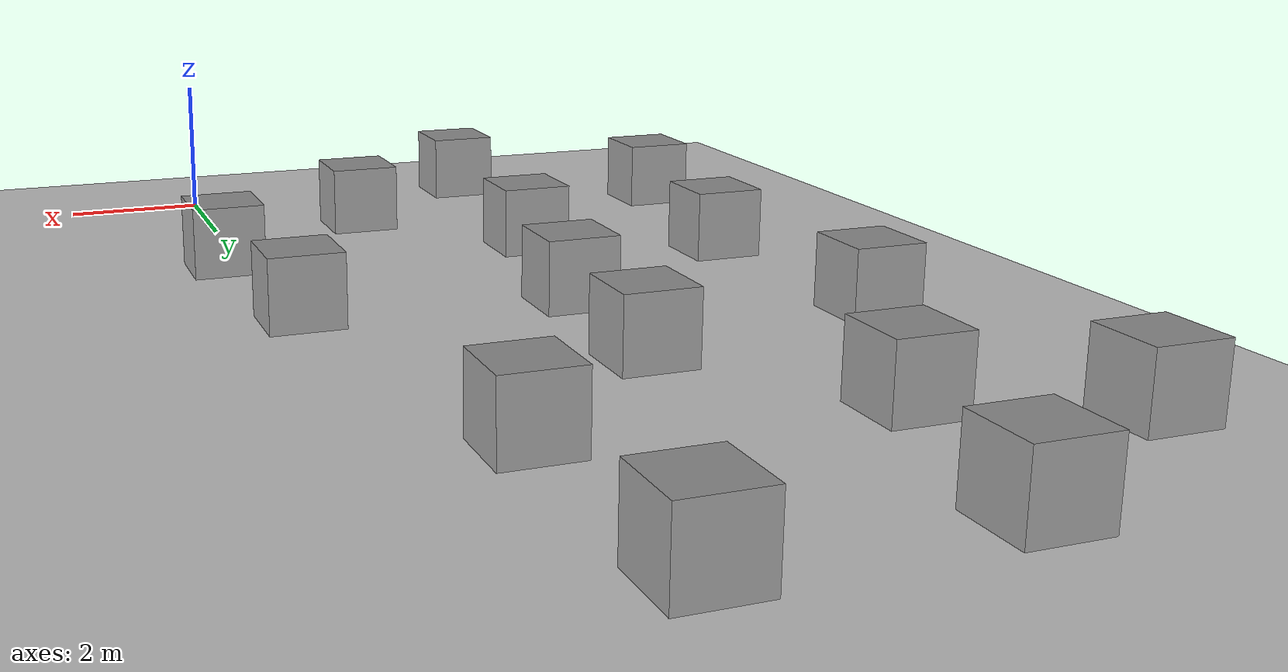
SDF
<sdf version="1.6">
 <world name="default">
  <model name="ground_plane">
   <static>1</static>
   <link name="link">
    <collision name="collision">
     <geometry><plane><normal>0 0 1</normal><size>100 100</size></plane></geometry>
     <surface><friction><ode><mu>100</mu><mu2>50</mu2></ode></friction></surface>
    </collision>
    <visual name="visual">
     <cast_shadows>0</cast_shadows>
     <geometry><plane><normal>0 0 1</normal><size>100 100</size></plane></geometry>
     <material>
      <script><uri>file://media/materials/scripts/gazebo.material</uri><name>Gazebo/Grey</name></script>
     </material>
    </visual>
   </link>
  </model>
  <model name="box_1">
   <link name="link_3">
    <inertial>
     <mass>1</mass>
     <inertia>
      <ixx>0.166667</ixx>
      <ixy>0</ixy>
      <ixz>0</ixz>
      <iyy>0.166667</iyy>
      <iyz>0</iyz>
      <izz>0.166667</izz>
     </inertia>
    </inertial>
    <pose>-0.10623 1.19174 0.5 0 -0 0</pose>
    <visual name="visual">
     <geometry><box><size>1 1 1</size></box></geometry>
     <material>
      <lighting>1</lighting>
      <script><uri>file://media/materials/scripts/gazebo.material</uri><name>Gazebo/Grey</name></script>
      <shader type="pixel"/>
     </material>
    </visual>
    <collision name="collision">
     <geometry><box><size>1 1 1</size></box></geometry>
     <surface>
      <friction>
       <ode><mu>1</mu><mu2>1</mu2><fdir1>0 0 0</fdir1><slip1>0</slip1><slip2>0</slip2></ode>
       <torsional>
        <coefficient>1</coefficient>
        <patch_radius>0</patch_radius>
        <surface_radius>0</surface_radius>
        <use_patch_radius>1</use_patch_radius>
        <ode><slip>0</slip></ode>
       </torsional>
      </friction>
      <bounce><restitution_coefficient>0</restitution_coefficient><threshold>1e+06</threshold></bounce>
      <contact>
       <collide_without_contact>0</collide_without_contact>
       <collide_without_contact_bitmask>1</collide_without_contact_bitmask>
       <collide_bitmask>1</collide_bitmask>
       <ode>
        <soft_cfm>0</soft_cfm>
        <soft_erp>0.2</soft_erp>
        <kp>1e+13</kp>
        <kd>1</kd>
        <max_vel>0.01</max_vel>
        <min_depth>0</min_depth>
       </ode>
       <bullet>
        <split_impulse>1</split_impulse>
        <split_impulse_penetration_threshold>-0.01</split_impulse_penetration_threshold>
        <soft_cfm>0</soft_cfm>
        <soft_erp>0.2</soft_erp>
        <kp>1e+13</kp>
        <kd>1</kd>
       </bullet>
      </contact>
     </surface>
    </collision>
   </link>
   <static>0</static>
   <pose>-2.12221 1.08979 0 0 -0 0</pose>
  </model>
  <model name="box_1_clone">
   <link name="link_3">
    <inertial>
     <mass>1</mass>
     <inertia>
      <ixx>0.166667</ixx>
      <ixy>0</ixy>
      <ixz>0</ixz>
      <iyy>0.166667</iyy>
      <iyz>0</iyz>
      <izz>0.166667</izz>
     </inertia>
    </inertial>
    <pose>-0.10623 1.19174 0.5 0 -0 0</pose>
    <visual name="visual">
     <geometry><box><size>1 1 1</size></box></geometry>
     <material>
      <lighting>1</lighting>
      <script><uri>file://media/materials/scripts/gazebo.material</uri><name>Gazebo/Grey</name></script>
      <shader type="pixel"/>
     </material>
    </visual>
    <collision name="collision">
     <geometry><box><size>1 1 1</size></box></geometry>
     <surface>
      <friction>
       <ode><mu>1</mu><mu2>1</mu2><fdir1>0 0 0</fdir1><slip1>0</slip1><slip2>0</slip2></ode>
       <torsional>
        <coefficient>1</coefficient>
        <patch_radius>0</patch_radius>
        <surface_radius>0</surface_radius>
        <use_patch_radius>1</use_patch_radius>
        <ode><slip>0</slip></ode>
       </torsional>
      </friction>
      <bounce><restitution_coefficient>0</restitution_coefficient><threshold>1e+06</threshold></bounce>
      <contact>
       <collide_without_contact>0</collide_without_contact>
       <collide_without_contact_bitmask>1</collide_without_contact_bitmask>
       <collide_bitmask>1</collide_bitmask>
       <ode>
        <soft_cfm>0</soft_cfm>
        <soft_erp>0.2</soft_erp>
        <kp>1e+13</kp>
        <kd>1</kd>
        <max_vel>0.01</max_vel>
        <min_depth>0</min_depth>
       </ode>
       <bullet>
        <split_impulse>1</split_impulse>
        <split_impulse_penetration_threshold>-0.01</split_impulse_penetration_threshold>
        <soft_cfm>0</soft_cfm>
        <soft_erp>0.2</soft_erp>
        <kp>1e+13</kp>
        <kd>1</kd>
       </bullet>
      </contact>
     </surface>
    </collision>
   </link>
   <static>0</static>
   <pose>-4.13322 3.35982 0 0 -0 0</pose>
  </model>
  <model name="box_1_clone_0">
   <link name="link_3">
    <inertial>
     <mass>1</mass>
     <inertia>
      <ixx>0.166667</ixx>
      <ixy>0</ixy>
      <ixz>0</ixz>
      <iyy>0.166667</iyy>
      <iyz>0</iyz>
      <izz>0.166667</izz>
     </inertia>
    </inertial>
    <pose>-0.10623 1.19174 0.5 0 -0 0</pose>
    <visual name="visual">
     <geometry><box><size>1 1 1</size></box></geometry>
     <material>
      <lighting>1</lighting>
      <script><uri>file://media/materials/scripts/gazebo.material</uri><name>Gazebo/Grey</name></script>
      <shader type="pixel"/>
     </material>
    </visual>
    <collision name="collision">
     <geometry><box><size>1 1 1</size></box></geometry>
     <surface>
      <friction>
       <ode><mu>1</mu><mu2>1</mu2><fdir1>0 0 0</fdir1><slip1>0</slip1><slip2>0</slip2></ode>
       <torsional>
        <coefficient>1</coefficient>
        <patch_radius>0</patch_radius>
        <surface_radius>0</surface_radius>
        <use_patch_radius>1</use_patch_radius>
        <ode><slip>0</slip></ode>
       </torsional>
      </friction>
      <bounce><restitution_coefficient>0</restitution_coefficient><threshold>1e+06</threshold></bounce>
      <contact>
       <collide_without_contact>0</collide_without_contact>
       <collide_without_contact_bitmask>1</collide_without_contact_bitmask>
       <collide_bitmask>1</collide_bitmask>
       <ode>
        <soft_cfm>0</soft_cfm>
        <soft_erp>0.2</soft_erp>
        <kp>1e+13</kp>
        <kd>1</kd>
        <max_vel>0.01</max_vel>
        <min_depth>0</min_depth>
       </ode>
       <bullet>
        <split_impulse>1</split_impulse>
        <split_impulse_penetration_threshold>-0.01</split_impulse_penetration_threshold>
        <soft_cfm>0</soft_cfm>
        <soft_erp>0.2</soft_erp>
        <kp>1e+13</kp>
        <kd>1</kd>
       </bullet>
      </contact>
     </surface>
    </collision>
   </link>
   <static>0</static>
   <pose>0.390969 3.09007 0 0 -0 0</pose>
  </model>
  <model name="box_1_clone_4">
   <link name="link_3">
    <inertial>
     <mass>1</mass>
     <inertia>
      <ixx>0.166667</ixx>
      <ixy>0</ixy>
      <ixz>0</ixz>
      <iyy>0.166667</iyy>
      <iyz>0</iyz>
      <izz>0.166667</izz>
     </inertia>
    </inertial>
    <pose>-0.10623 1.19174 0.5 0 -0 0</pose>
    <visual name="visual">
     <geometry><box><size>1 1 1</size></box></geometry>
     <material>
      <lighting>1</lighting>
      <script><uri>file://media/materials/scripts/gazebo.material</uri><name>Gazebo/Grey</name></script>
      <shader type="pixel"/>
     </material>
    </visual>
    <collision name="collision">
     <geometry><box><size>1 1 1</size></box></geometry>
     <surface>
      <friction>
       <ode><mu>1</mu><mu2>1</mu2><fdir1>0 0 0</fdir1><slip1>0</slip1><slip2>0</slip2></ode>
       <torsional>
        <coefficient>1</coefficient>
        <patch_radius>0</patch_radius>
        <surface_radius>0</surface_radius>
        <use_patch_radius>1</use_patch_radius>
        <ode><slip>0</slip></ode>
       </torsional>
      </friction>
      <bounce><restitution_coefficient>0</restitution_coefficient><threshold>1e+06</threshold></bounce>
      <contact>
       <collide_without_contact>0</collide_without_contact>
       <collide_without_contact_bitmask>1</collide_without_contact_bitmask>
       <collide_bitmask>1</collide_bitmask>
       <ode>
        <soft_cfm>0</soft_cfm>
        <soft_erp>0.2</soft_erp>
        <kp>1e+13</kp>
        <kd>1</kd>
        <max_vel>0.01</max_vel>
        <min_depth>0</min_depth>
       </ode>
       <bullet>
        <split_impulse>1</split_impulse>
        <split_impulse_penetration_threshold>-0.01</split_impulse_penetration_threshold>
        <soft_cfm>0</soft_cfm>
        <soft_erp>0.2</soft_erp>
        <kp>1e+13</kp>
        <kd>1</kd>
       </bullet>
      </contact>
     </surface>
    </collision>
   </link>
   <static>0</static>
   <pose>-4.39972 -0.886482 0 0 -0 0</pose>
  </model>
  <model name="box_1_clone_6">
   <link name="link_3">
    <inertial>
     <mass>1</mass>
     <inertia>
      <ixx>0.166667</ixx>
      <ixy>0</ixy>
      <ixz>0</ixz>
      <iyy>0.166667</iyy>
      <iyz>0</iyz>
      <izz>0.166667</izz>
     </inertia>
    </inertial>
    <pose>-0.10623 1.19174 0.5 0 -0 0</pose>
    <visual name="visual">
     <geometry><box><size>1 1 1</size></box></geometry>
     <material>
      <lighting>1</lighting>
      <script><uri>file://media/materials/scripts/gazebo.material</uri><name>Gazebo/Grey</name></script>
      <shader type="pixel"/>
     </material>
    </visual>
    <collision name="collision">
     <geometry><box><size>1 1 1</size></box></geometry>
     <surface>
      <friction>
       <ode><mu>1</mu><mu2>1</mu2><fdir1>0 0 0</fdir1><slip1>0</slip1><slip2>0</slip2></ode>
       <torsional>
        <coefficient>1</coefficient>
        <patch_radius>0</patch_radius>
        <surface_radius>0</surface_radius>
        <use_patch_radius>1</use_patch_radius>
        <ode><slip>0</slip></ode>
       </torsional>
      </friction>
      <bounce><restitution_coefficient>0</restitution_coefficient><threshold>1e+06</threshold></bounce>
      <contact>
       <collide_without_contact>0</collide_without_contact>
       <collide_without_contact_bitmask>1</collide_without_contact_bitmask>
       <collide_bitmask>1</collide_bitmask>
       <ode>
        <soft_cfm>0</soft_cfm>
        <soft_erp>0.2</soft_erp>
        <kp>1e+13</kp>
        <kd>1</kd>
        <max_vel>0.01</max_vel>
        <min_depth>0</min_depth>
       </ode>
       <bullet>
        <split_impulse>1</split_impulse>
        <split_impulse_penetration_threshold>-0.01</split_impulse_penetration_threshold>
        <soft_cfm>0</soft_cfm>
        <soft_erp>0.2</soft_erp>
        <kp>1e+13</kp>
        <kd>1</kd>
       </bullet>
      </contact>
     </surface>
    </collision>
   </link>
   <static>0</static>
   <pose>-3.4786 9.0601 0 0 -0 0</pose>
  </model>
  <model name="box_1_clone_7">
   <link name="link_3">
    <inertial>
     <mass>1</mass>
     <inertia>
      <ixx>0.166667</ixx>
      <ixy>0</ixy>
      <ixz>0</ixz>
      <iyy>0.166667</iyy>
      <iyz>0</iyz>
      <izz>0.166667</izz>
     </inertia>
    </inertial>
    <pose>-0.10623 1.19174 0.5 0 -0 0</pose>
    <visual name="visual">
     <geometry><box><size>1 1 1</size></box></geometry>
     <material>
      <lighting>1</lighting>
      <script><uri>file://media/materials/scripts/gazebo.material</uri><name>Gazebo/Grey</name></script>
      <shader type="pixel"/>
     </material>
    </visual>
    <collision name="collision">
     <geometry><box><size>1 1 1</size></box></geometry>
     <surface>
      <friction>
       <ode><mu>1</mu><mu2>1</mu2><fdir1>0 0 0</fdir1><slip1>0</slip1><slip2>0</slip2></ode>
       <torsional>
        <coefficient>1</coefficient>
        <patch_radius>0</patch_radius>
        <surface_radius>0</surface_radius>
        <use_patch_radius>1</use_patch_radius>
        <ode><slip>0</slip></ode>
       </torsional>
      </friction>
      <bounce><restitution_coefficient>0</restitution_coefficient><threshold>1e+06</threshold></bounce>
      <contact>
       <collide_without_contact>0</collide_without_contact>
       <collide_without_contact_bitmask>1</collide_without_contact_bitmask>
       <collide_bitmask>1</collide_bitmask>
       <ode>
        <soft_cfm>0</soft_cfm>
        <soft_erp>0.2</soft_erp>
        <kp>1e+13</kp>
        <kd>1</kd>
        <max_vel>0.01</max_vel>
        <min_depth>0</min_depth>
       </ode>
       <bullet>
        <split_impulse>1</split_impulse>
        <split_impulse_penetration_threshold>-0.01</split_impulse_penetration_threshold>
        <soft_cfm>0</soft_cfm>
        <soft_erp>0.2</soft_erp>
        <kp>1e+13</kp>
        <kd>1</kd>
       </bullet>
      </contact>
     </surface>
    </collision>
   </link>
   <static>0</static>
   <pose>-1.16627 11.2433 0 0 -0 0</pose>
  </model>
  <model name="box_1_clone_14">
   <link name="link_3">
    <inertial>
     <mass>1</mass>
     <inertia>
      <ixx>0.166667</ixx>
      <ixy>0</ixy>
      <ixz>0</ixz>
      <iyy>0.166667</iyy>
      <iyz>0</iyz>
      <izz>0.166667</izz>
     </inertia>
    </inertial>
    <pose>-0.10623 1.19174 0.5 0 -0 0</pose>
    <visual name="visual">
     <geometry><box><size>1 1 1</size></box></geometry>
     <material>
      <lighting>1</lighting>
      <script><uri>file://media/materials/scripts/gazebo.material</uri><name>Gazebo/Grey</name></script>
      <shader type="pixel"/>
     </material>
    </visual>
    <collision name="collision">
     <geometry><box><size>1 1 1</size></box></geometry>
     <surface>
      <friction>
       <ode><mu>1</mu><mu2>1</mu2><fdir1>0 0 0</fdir1><slip1>0</slip1><slip2>0</slip2></ode>
       <torsional>
        <coefficient>1</coefficient>
        <patch_radius>0</patch_radius>
        <surface_radius>0</surface_radius>
        <use_patch_radius>1</use_patch_radius>
        <ode><slip>0</slip></ode>
       </torsional>
      </friction>
      <bounce><restitution_coefficient>0</restitution_coefficient><threshold>1e+06</threshold></bounce>
      <contact>
       <collide_without_contact>0</collide_without_contact>
       <collide_without_contact_bitmask>1</collide_without_contact_bitmask>
       <collide_bitmask>1</collide_bitmask>
       <ode>
        <soft_cfm>0</soft_cfm>
        <soft_erp>0.2</soft_erp>
        <kp>1e+13</kp>
        <kd>1</kd>
        <max_vel>0.01</max_vel>
        <min_depth>0</min_depth>
       </ode>
       <bullet>
        <split_impulse>1</split_impulse>
        <split_impulse_penetration_threshold>-0.01</split_impulse_penetration_threshold>
        <soft_cfm>0</soft_cfm>
        <soft_erp>0.2</soft_erp>
        <kp>1e+13</kp>
        <kd>1</kd>
       </bullet>
      </contact>
     </surface>
    </collision>
   </link>
   <static>0</static>
   <pose>-1.43147 14.554 0 0 -0 0</pose>
  </model>
  <model name="box_1_clone_15">
   <link name="link_3">
    <inertial>
     <mass>1</mass>
     <inertia>
      <ixx>0.166667</ixx>
      <ixy>0</ixy>
      <ixz>0</ixz>
      <iyy>0.166667</iyy>
      <iyz>0</iyz>
      <izz>0.166667</izz>
     </inertia>
    </inertial>
    <pose>-0.10623 1.19174 0.5 0 -0 0</pose>
    <visual name="visual">
     <geometry><box><size>1 1 1</size></box></geometry>
     <material>
      <lighting>1</lighting>
      <script><uri>file://media/materials/scripts/gazebo.material</uri><name>Gazebo/Grey</name></script>
      <shader type="pixel"/>
     </material>
    </visual>
    <collision name="collision">
     <geometry><box><size>1 1 1</size></box></geometry>
     <surface>
      <friction>
       <ode><mu>1</mu><mu2>1</mu2><fdir1>0 0 0</fdir1><slip1>0</slip1><slip2>0</slip2></ode>
       <torsional>
        <coefficient>1</coefficient>
        <patch_radius>0</patch_radius>
        <surface_radius>0</surface_radius>
        <use_patch_radius>1</use_patch_radius>
        <ode><slip>0</slip></ode>
       </torsional>
      </friction>
      <bounce><restitution_coefficient>0</restitution_coefficient><threshold>1e+06</threshold></bounce>
      <contact>
       <collide_without_contact>0</collide_without_contact>
       <collide_without_contact_bitmask>1</collide_without_contact_bitmask>
       <collide_bitmask>1</collide_bitmask>
       <ode>
        <soft_cfm>0</soft_cfm>
        <soft_erp>0.2</soft_erp>
        <kp>1e+13</kp>
        <kd>1</kd>
        <max_vel>0.01</max_vel>
        <min_depth>0</min_depth>
       </ode>
       <bullet>
        <split_impulse>1</split_impulse>
        <split_impulse_penetration_threshold>-0.01</split_impulse_penetration_threshold>
        <soft_cfm>0</soft_cfm>
        <soft_erp>0.2</soft_erp>
        <kp>1e+13</kp>
        <kd>1</kd>
       </bullet>
      </contact>
     </surface>
    </collision>
   </link>
   <static>0</static>
   <pose>-4.84389 14.5059 0 0 -0 0</pose>
  </model>
  <model name="box_1_clone_16">
   <link name="link_3">
    <inertial>
     <mass>1</mass>
     <inertia>
      <ixx>0.166667</ixx>
      <ixy>0</ixy>
      <ixz>0</ixz>
      <iyy>0.166667</iyy>
      <iyz>0</iyz>
      <izz>0.166667</izz>
     </inertia>
    </inertial>
    <pose>-0.10623 1.19174 0.5 0 -0 0</pose>
    <visual name="visual">
     <geometry><box><size>1 1 1</size></box></geometry>
     <material>
      <lighting>1</lighting>
      <script><uri>file://media/materials/scripts/gazebo.material</uri><name>Gazebo/Grey</name></script>
      <shader type="pixel"/>
     </material>
    </visual>
    <collision name="collision">
     <geometry><box><size>1 1 1</size></box></geometry>
     <surface>
      <friction>
       <ode><mu>1</mu><mu2>1</mu2><fdir1>0 0 0</fdir1><slip1>0</slip1><slip2>0</slip2></ode>
       <torsional>
        <coefficient>1</coefficient>
        <patch_radius>0</patch_radius>
        <surface_radius>0</surface_radius>
        <use_patch_radius>1</use_patch_radius>
        <ode><slip>0</slip></ode>
       </torsional>
      </friction>
      <bounce><restitution_coefficient>0</restitution_coefficient><threshold>1e+06</threshold></bounce>
      <contact>
       <collide_without_contact>0</collide_without_contact>
       <collide_without_contact_bitmask>1</collide_without_contact_bitmask>
       <collide_bitmask>1</collide_bitmask>
       <ode>
        <soft_cfm>0</soft_cfm>
        <soft_erp>0.2</soft_erp>
        <kp>1e+13</kp>
        <kd>1</kd>
        <max_vel>0.01</max_vel>
        <min_depth>0</min_depth>
       </ode>
       <bullet>
        <split_impulse>1</split_impulse>
        <split_impulse_penetration_threshold>-0.01</split_impulse_penetration_threshold>
        <soft_cfm>0</soft_cfm>
        <soft_erp>0.2</soft_erp>
        <kp>1e+13</kp>
        <kd>1</kd>
       </bullet>
      </contact>
     </surface>
    </collision>
   </link>
   <static>0</static>
   <pose>-5.42133 11.5671 0 0 -0 0</pose>
  </model>
  <model name="box_1_clone_17">
   <link name="link_3">
    <inertial>
     <mass>1</mass>
     <inertia>
      <ixx>0.166667</ixx>
      <ixy>0</ixy>
      <ixz>0</ixz>
      <iyy>0.166667</iyy>
      <iyz>0</iyz>
      <izz>0.166667</izz>
     </inertia>
    </inertial>
    <pose>-0.10623 1.19174 0.5 0 -0 0</pose>
    <visual name="visual">
     <geometry><box><size>1 1 1</size></box></geometry>
     <material>
      <lighting>1</lighting>
      <script><uri>file://media/materials/scripts/gazebo.material</uri><name>Gazebo/Grey</name></script>
      <shader type="pixel"/>
     </material>
    </visual>
    <collision name="collision">
     <geometry><box><size>1 1 1</size></box></geometry>
     <surface>
      <friction>
       <ode><mu>1</mu><mu2>1</mu2><fdir1>0 0 0</fdir1><slip1>0</slip1><slip2>0</slip2></ode>
       <torsional>
        <coefficient>1</coefficient>
        <patch_radius>0</patch_radius>
        <surface_radius>0</surface_radius>
        <use_patch_radius>1</use_patch_radius>
        <ode><slip>0</slip></ode>
       </torsional>
      </friction>
      <bounce><restitution_coefficient>0</restitution_coefficient><threshold>1e+06</threshold></bounce>
      <contact>
       <collide_without_contact>0</collide_without_contact>
       <collide_without_contact_bitmask>1</collide_without_contact_bitmask>
       <collide_bitmask>1</collide_bitmask>
       <ode>
        <soft_cfm>0</soft_cfm>
        <soft_erp>0.2</soft_erp>
        <kp>1e+13</kp>
        <kd>1</kd>
        <max_vel>0.01</max_vel>
        <min_depth>0</min_depth>
       </ode>
       <bullet>
        <split_impulse>1</split_impulse>
        <split_impulse_penetration_threshold>-0.01</split_impulse_penetration_threshold>
        <soft_cfm>0</soft_cfm>
        <soft_erp>0.2</soft_erp>
        <kp>1e+13</kp>
        <kd>1</kd>
       </bullet>
      </contact>
     </surface>
    </collision>
   </link>
   <static>0</static>
   <pose>-7.74453 12.6972 0 0 -0 0</pose>
  </model>
  <model name="box_1_clone_19">
   <link name="link_3">
    <inertial>
     <mass>1</mass>
     <inertia>
      <ixx>0.166667</ixx>
      <ixy>0</ixy>
      <ixz>0</ixz>
      <iyy>0.166667</iyy>
      <iyz>0</iyz>
      <izz>0.166667</izz>
     </inertia>
    </inertial>
    <pose>-0.10623 1.19174 0.5 0 -0 0</pose>
    <visual name="visual">
     <geometry><box><size>1 1 1</size></box></geometry>
     <material>
      <lighting>1</lighting>
      <script><uri>file://media/materials/scripts/gazebo.material</uri><name>Gazebo/Grey</name></script>
      <shader type="pixel"/>
     </material>
    </visual>
    <collision name="collision">
     <geometry><box><size>1 1 1</size></box></geometry>
     <surface>
      <friction>
       <ode><mu>1</mu><mu2>1</mu2><fdir1>0 0 0</fdir1><slip1>0</slip1><slip2>0</slip2></ode>
       <torsional>
        <coefficient>1</coefficient>
        <patch_radius>0</patch_radius>
        <surface_radius>0</surface_radius>
        <use_patch_radius>1</use_patch_radius>
        <ode><slip>0</slip></ode>
       </torsional>
      </friction>
      <bounce><restitution_coefficient>0</restitution_coefficient><threshold>1e+06</threshold></bounce>
      <contact>
       <collide_without_contact>0</collide_without_contact>
       <collide_without_contact_bitmask>1</collide_without_contact_bitmask>
       <collide_bitmask>1</collide_bitmask>
       <ode>
        <soft_cfm>0</soft_cfm>
        <soft_erp>0.2</soft_erp>
        <kp>1e+13</kp>
        <kd>1</kd>
        <max_vel>0.01</max_vel>
        <min_depth>0</min_depth>
       </ode>
       <bullet>
        <split_impulse>1</split_impulse>
        <split_impulse_penetration_threshold>-0.01</split_impulse_penetration_threshold>
        <soft_cfm>0</soft_cfm>
        <soft_erp>0.2</soft_erp>
        <kp>1e+13</kp>
        <kd>1</kd>
       </bullet>
      </contact>
     </surface>
    </collision>
   </link>
   <static>0</static>
   <pose>-7.30771 0.831586 0 0 -0 0</pose>
  </model>
  <model name="box_1_clone_clone">
   <link name="link_3">
    <inertial>
     <mass>1</mass>
     <inertia>
      <ixx>0.166667</ixx>
      <ixy>0</ixy>
      <ixz>0</ixz>
      <iyy>0.166667</iyy>
      <iyz>0</iyz>
      <izz>0.166667</izz>
     </inertia>
    </inertial>
    <pose>-0.10623 1.19174 0.5 0 -0 0</pose>
    <visual name="visual">
     <geometry><box><size>1 1 1</size></box></geometry>
     <material>
      <lighting>1</lighting>
      <script><uri>file://media/materials/scripts/gazebo.material</uri><name>Gazebo/Grey</name></script>
      <shader type="pixel"/>
     </material>
    </visual>
    <collision name="collision">
     <geometry><box><size>1 1 1</size></box></geometry>
     <surface>
      <friction>
       <ode><mu>1</mu><mu2>1</mu2><fdir1>0 0 0</fdir1><slip1>0</slip1><slip2>0</slip2></ode>
       <torsional>
        <coefficient>1</coefficient>
        <patch_radius>0</patch_radius>
        <surface_radius>0</surface_radius>
        <use_patch_radius>1</use_patch_radius>
        <ode><slip>0</slip></ode>
       </torsional>
      </friction>
      <bounce><restitution_coefficient>0</restitution_coefficient><threshold>1e+06</threshold></bounce>
      <contact>
       <collide_without_contact>0</collide_without_contact>
       <collide_without_contact_bitmask>1</collide_without_contact_bitmask>
       <collide_bitmask>1</collide_bitmask>
       <ode>
        <soft_cfm>0</soft_cfm>
        <soft_erp>0.2</soft_erp>
        <kp>1e+13</kp>
        <kd>1</kd>
        <max_vel>0.01</max_vel>
        <min_depth>0</min_depth>
       </ode>
       <bullet>
        <split_impulse>1</split_impulse>
        <split_impulse_penetration_threshold>-0.01</split_impulse_penetration_threshold>
        <soft_cfm>0</soft_cfm>
        <soft_erp>0.2</soft_erp>
        <kp>1e+13</kp>
        <kd>1</kd>
       </bullet>
      </contact>
     </surface>
    </collision>
   </link>
   <static>0</static>
   <pose>-6.69553 4.55073 0 0 -0 0</pose>
  </model>
  <model name="box_1_clone_clone_0">
   <link name="link_3">
    <inertial>
     <mass>1</mass>
     <inertia>
      <ixx>0.166667</ixx>
      <ixy>0</ixy>
      <ixz>0</ixz>
      <iyy>0.166667</iyy>
      <iyz>0</iyz>
      <izz>0.166667</izz>
     </inertia>
    </inertial>
    <pose>-0.10623 1.19174 0.5 0 -0 0</pose>
    <visual name="visual">
     <geometry><box><size>1 1 1</size></box></geometry>
     <material>
      <lighting>1</lighting>
      <script><uri>file://media/materials/scripts/gazebo.material</uri><name>Gazebo/Grey</name></script>
      <shader type="pixel"/>
     </material>
    </visual>
    <collision name="collision">
     <geometry><box><size>1 1 1</size></box></geometry>
     <surface>
      <friction>
       <ode><mu>1</mu><mu2>1</mu2><fdir1>0 0 0</fdir1><slip1>0</slip1><slip2>0</slip2></ode>
       <torsional>
        <coefficient>1</coefficient>
        <patch_radius>0</patch_radius>
        <surface_radius>0</surface_radius>
        <use_patch_radius>1</use_patch_radius>
        <ode><slip>0</slip></ode>
       </torsional>
      </friction>
      <bounce><restitution_coefficient>0</restitution_coefficient><threshold>1e+06</threshold></bounce>
      <contact>
       <collide_without_contact>0</collide_without_contact>
       <collide_without_contact_bitmask>1</collide_without_contact_bitmask>
       <collide_bitmask>1</collide_bitmask>
       <ode>
        <soft_cfm>0</soft_cfm>
        <soft_erp>0.2</soft_erp>
        <kp>1e+13</kp>
        <kd>1</kd>
        <max_vel>0.01</max_vel>
        <min_depth>0</min_depth>
       </ode>
       <bullet>
        <split_impulse>1</split_impulse>
        <split_impulse_penetration_threshold>-0.01</split_impulse_penetration_threshold>
        <soft_cfm>0</soft_cfm>
        <soft_erp>0.2</soft_erp>
        <kp>1e+13</kp>
        <kd>1</kd>
       </bullet>
      </contact>
     </surface>
    </collision>
   </link>
   <static>0</static>
   <pose>-3.59701 6.46109 0 0 -0 0</pose>
  </model>
  <model name="box_1_clone_clone_1">
   <link name="link_3">
    <inertial>
     <mass>1</mass>
     <inertia>
      <ixx>0.166667</ixx>
      <ixy>0</ixy>
      <ixz>0</ixz>
      <iyy>0.166667</iyy>
      <iyz>0</iyz>
      <izz>0.166667</izz>
     </inertia>
    </inertial>
    <pose>-0.10623 1.19174 0.5 0 -0 0</pose>
    <visual name="visual">
     <geometry><box><size>1 1 1</size></box></geometry>
     <material>
      <lighting>1</lighting>
      <script><uri>file://media/materials/scripts/gazebo.material</uri><name>Gazebo/Grey</name></script>
      <shader type="pixel"/>
     </material>
    </visual>
    <collision name="collision">
     <geometry><box><size>1 1 1</size></box></geometry>
     <surface>
      <friction>
       <ode><mu>1</mu><mu2>1</mu2><fdir1>0 0 0</fdir1><slip1>0</slip1><slip2>0</slip2></ode>
       <torsional>
        <coefficient>1</coefficient>
        <patch_radius>0</patch_radius>
        <surface_radius>0</surface_radius>
        <use_patch_radius>1</use_patch_radius>
        <ode><slip>0</slip></ode>
       </torsional>
      </friction>
      <bounce><restitution_coefficient>0</restitution_coefficient><threshold>1e+06</threshold></bounce>
      <contact>
       <collide_without_contact>0</collide_without_contact>
       <collide_without_contact_bitmask>1</collide_without_contact_bitmask>
       <collide_bitmask>1</collide_bitmask>
       <ode>
        <soft_cfm>0</soft_cfm>
        <soft_erp>0.2</soft_erp>
        <kp>1e+13</kp>
        <kd>1</kd>
        <max_vel>0.01</max_vel>
        <min_depth>0</min_depth>
       </ode>
       <bullet>
        <split_impulse>1</split_impulse>
        <split_impulse_penetration_threshold>-0.01</split_impulse_penetration_threshold>
        <soft_cfm>0</soft_cfm>
        <soft_erp>0.2</soft_erp>
        <kp>1e+13</kp>
        <kd>1</kd>
       </bullet>
      </contact>
     </surface>
    </collision>
   </link>
   <static>0</static>
   <pose>-0.023858 6.09152 0 0 -0 0</pose>
  </model>
  <model name="box_1_clone_clone_8">
   <link name="link_3">
    <inertial>
     <mass>1</mass>
     <inertia>
      <ixx>0.166667</ixx>
      <ixy>0</ixy>
      <ixz>0</ixz>
      <iyy>0.166667</iyy>
      <iyz>0</iyz>
      <izz>0.166667</izz>
     </inertia>
    </inertial>
    <pose>-0.10623 1.19174 0.5 0 -0 0</pose>
    <visual name="visual">
     <geometry><box><size>1 1 1</size></box></geometry>
     <material>
      <lighting>1</lighting>
      <script><uri>file://media/materials/scripts/gazebo.material</uri><name>Gazebo/Grey</name></script>
      <shader type="pixel"/>
     </material>
    </visual>
    <collision name="collision">
     <geometry><box><size>1 1 1</size></box></geometry>
     <surface>
      <friction>
       <ode><mu>1</mu><mu2>1</mu2><fdir1>0 0 0</fdir1><slip1>0</slip1><slip2>0</slip2></ode>
       <torsional>
        <coefficient>1</coefficient>
        <patch_radius>0</patch_radius>
        <surface_radius>0</surface_radius>
        <use_patch_radius>1</use_patch_radius>
        <ode><slip>0</slip></ode>
       </torsional>
      </friction>
      <bounce><restitution_coefficient>0</restitution_coefficient><threshold>1e+06</threshold></bounce>
      <contact>
       <collide_without_contact>0</collide_without_contact>
       <collide_without_contact_bitmask>1</collide_without_contact_bitmask>
       <collide_bitmask>1</collide_bitmask>
       <ode>
        <soft_cfm>0</soft_cfm>
        <soft_erp>0.2</soft_erp>
        <kp>1e+13</kp>
        <kd>1</kd>
        <max_vel>0.01</max_vel>
        <min_depth>0</min_depth>
       </ode>
       <bullet>
        <split_impulse>1</split_impulse>
        <split_impulse_penetration_threshold>-0.01</split_impulse_penetration_threshold>
        <soft_cfm>0</soft_cfm>
        <soft_erp>0.2</soft_erp>
        <kp>1e+13</kp>
        <kd>1</kd>
       </bullet>
      </contact>
     </surface>
    </collision>
   </link>
   <static>0</static>
   <pose>-7.09795 8.15468 0 0 -0 0</pose>
  </model>
 </world>
</sdf>
